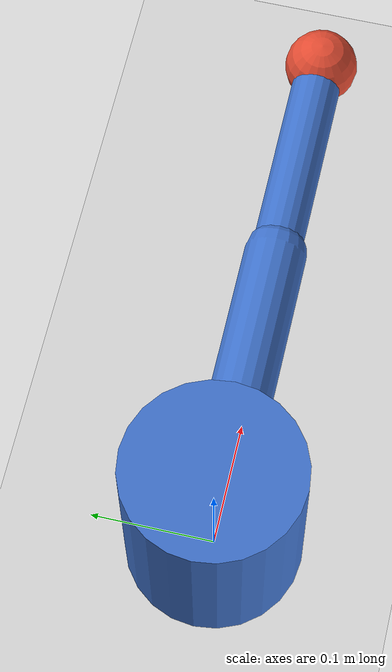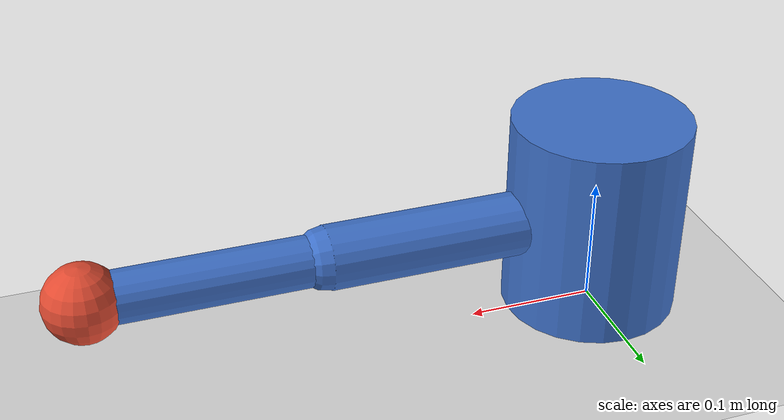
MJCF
<mujoco model="p37_reference_tabletop_arm">
  <compiler angle="radian"/>
  <option timestep="0.002" gravity="0 0 -9.81"/>
  <default>
    <geom density="500" rgba="0.25 0.45 0.8 1"/>
  </default>
  <worldbody>
    <geom name="floor" type="plane" size="1 1 0.02" rgba="0.85 0.85 0.85 1"/>
    <body name="base" pos="0 0 0.08">
      <geom type="cylinder" size="0.07 0.08"/>
      <body name="link_1">
        <joint name="shoulder" type="hinge" axis="0 0 1" range="-2.0 2.0" damping="0.5" armature="0.02"/>
        <geom type="capsule" size="0.025" fromto="0 0 0 0.22 0 0"/>
        <body name="link_2" pos="0.22 0 0">
          <joint name="elbow" type="hinge" axis="0 0 1" range="-2.0 2.0" damping="0.5" armature="0.02"/>
          <geom type="capsule" size="0.02" fromto="0 0 0 0.18 0 0"/>
          <body name="end_effector" pos="0.18 0 0">
            <geom type="sphere" size="0.03" rgba="0.9 0.3 0.2 1"/>
          </body>
        </body>
      </body>
    </body>
  </worldbody>
  <actuator>
    <position name="shoulder_position" joint="shoulder" kp="80" ctrlrange="-2.0 2.0" ctrllimited="true"/>
    <position name="elbow_position" joint="elbow" kp="60" ctrlrange="-2.0 2.0" ctrllimited="true"/>
  </actuator>
</mujoco>
